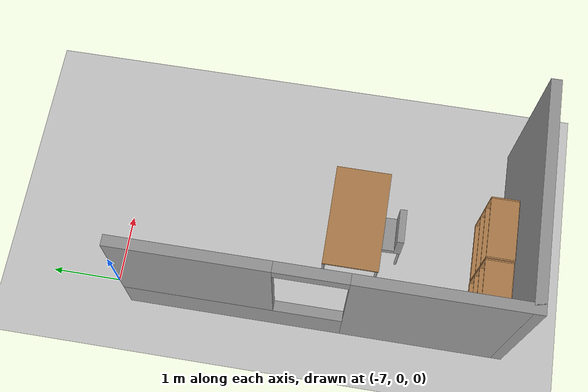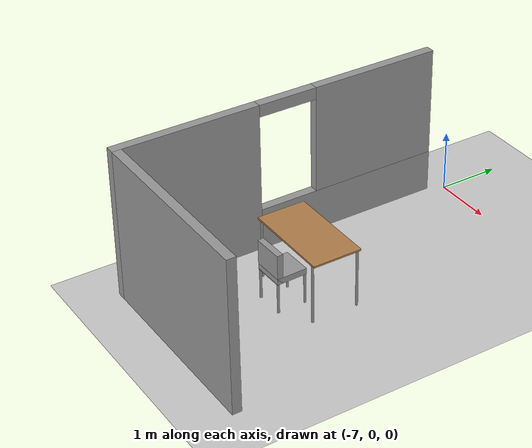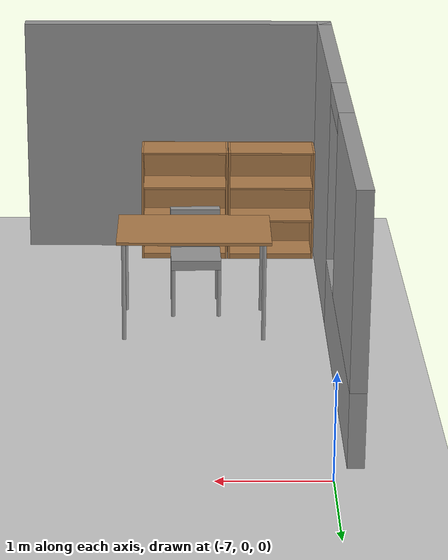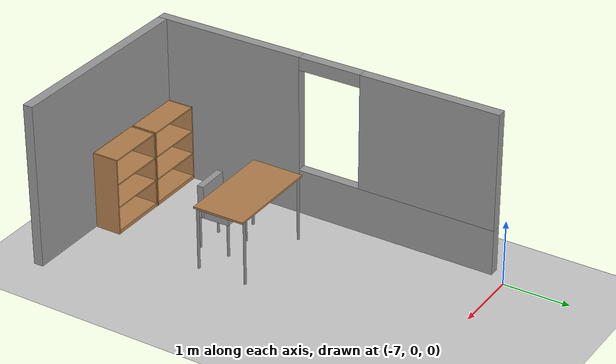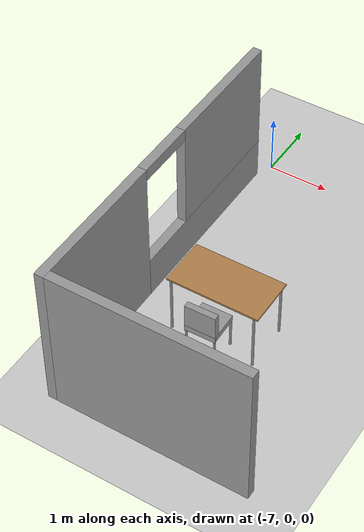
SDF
<sdf version="1.6">
 <world name="default">
  <model name="ground_plane">
   <static>1</static>
   <link name="link">
    <collision name="collision">
     <geometry><plane><normal>0 0 1</normal><size>100 100</size></plane></geometry>
     <surface>
      <contact><collide_bitmask>65535</collide_bitmask></contact>
      <friction><ode><mu>100</mu><mu2>50</mu2></ode></friction>
     </surface>
    </collision>
    <visual name="visual">
     <cast_shadows>0</cast_shadows>
     <geometry><plane><normal>0 0 1</normal><size>100 100</size></plane></geometry>
     <material>
      <script><uri>file://media/materials/scripts/gazebo.material</uri><name>Gazebo/Grey</name></script>
     </material>
    </visual>
   </link>
  </model>
  <model name="dunder_mifflin_scranton_full">
   <pose>4.5312 0.479645 0 0 -0 0</pose>
   <link name="Wall_12">
    <collision name="Wall_12_Collision">
     <geometry><box><size>3.25 0.15 2.5</size></box></geometry>
     <pose>0 0 1.25 0 -0 0</pose>
    </collision>
    <visual name="Wall_12_Visual">
     <pose>0 0 1.25 0 -0 0</pose>
     <geometry><box><size>3.25 0.15 2.5</size></box></geometry>
     <material>
      <script><uri>file://media/materials/scripts/gazebo.material</uri><name>Gazebo/Grey</name></script>
      <ambient>1 1 1 1</ambient>
     </material>
     <meta><layer>0</layer></meta>
    </visual>
    <pose>-10.1821 -6.15 0 0 -0 3.14159</pose>
   </link>
   <link name="Wall_13">
    <pose>-11.7321 -3.475 0 0 -0 1.5708</pose>
    <visual name="Wall_13_Visual_0">
     <pose>-1.56118 0 1.25 0 -0 0</pose>
     <geometry><box><size>2.37764 0.15 2.5</size></box></geometry>
     <material>
      <script><uri>file://media/materials/scripts/gazebo.material</uri><name>Gazebo/Grey</name></script>
      <ambient>1 1 1 1</ambient>
     </material>
     <meta><layer>0</layer></meta>
    </visual>
    <collision name="Wall_13_Collision_0">
     <geometry><box><size>2.37764 0.15 2.5</size></box></geometry>
     <pose>-1.56118 0 1.25 0 -0 0</pose>
    </collision>
    <visual name="Wall_13_Visual_1">
     <pose>1.18882 0 0.35 0 -0 0</pose>
     <geometry><box><size>3.12236 0.15 0.7</size></box></geometry>
     <material>
      <script><uri>file://media/materials/scripts/gazebo.material</uri><name>Gazebo/Grey</name></script>
      <ambient>1 1 1 1</ambient>
     </material>
     <meta><layer>0</layer></meta>
    </visual>
    <collision name="Wall_13_Collision_1">
     <geometry><box><size>3.12236 0.15 0.7</size></box></geometry>
     <pose>1.18882 0 0.35 0 -0 0</pose>
    </collision>
    <visual name="Wall_13_Visual_2">
     <pose>1.67832 0 1.6 0 -0 0</pose>
     <geometry><box><size>2.14336 0.15 1.8</size></box></geometry>
     <material>
      <script><uri>file://media/materials/scripts/gazebo.material</uri><name>Gazebo/Grey</name></script>
      <ambient>1 1 1 1</ambient>
     </material>
     <meta><layer>0</layer></meta>
    </visual>
    <collision name="Wall_13_Collision_2">
     <geometry><box><size>2.14336 0.15 1.8</size></box></geometry>
     <pose>1.67832 0 1.6 0 -0 0</pose>
    </collision>
    <visual name="Wall_13_Visual_3">
     <pose>0.117145 0 2.4 0 -0 0</pose>
     <geometry><box><size>0.979 0.15 0.2</size></box></geometry>
     <material>
      <script><uri>file://media/materials/scripts/gazebo.material</uri><name>Gazebo/Grey</name></script>
      <ambient>1 1 1 1</ambient>
     </material>
     <meta><layer>0</layer></meta>
    </visual>
    <collision name="Wall_13_Collision_3">
     <geometry><box><size>0.979 0.15 0.2</size></box></geometry>
     <pose>0.117145 0 2.4 0 -0 0</pose>
    </collision>
   </link>
   <static>1</static>
  </model>
  <model name="table">
   <static>1</static>
   <link name="link">
    <collision name="surface">
     <pose>0 0 1 0 -0 0</pose>
     <geometry><box><size>1.5 0.8 0.03</size></box></geometry>
     <surface><friction><ode><mu>0.6</mu><mu2>0.6</mu2></ode></friction></surface>
    </collision>
    <visual name="visual1">
     <pose>0 0 1 0 -0 0</pose>
     <geometry><box><size>1.5 0.8 0.03</size></box></geometry>
     <material>
      <script><uri>file://media/materials/scripts/gazebo.material</uri><name>Gazebo/Wood</name></script>
     </material>
    </visual>
    <collision name="front_left_leg">
     <pose>0.68 0.38 0.5 0 -0 0</pose>
     <geometry><cylinder><radius>0.02</radius><length>1</length></cylinder></geometry>
    </collision>
    <visual name="front_left_leg">
     <pose>0.68 0.38 0.5 0 -0 0</pose>
     <geometry><cylinder><radius>0.02</radius><length>1</length></cylinder></geometry>
     <material>
      <script><uri>file://media/materials/scripts/gazebo.material</uri><name>Gazebo/Grey</name></script>
     </material>
    </visual>
    <collision name="front_right_leg">
     <pose>0.68 -0.38 0.5 0 -0 0</pose>
     <geometry><cylinder><radius>0.02</radius><length>1</length></cylinder></geometry>
    </collision>
    <visual name="front_right_leg">
     <pose>0.68 -0.38 0.5 0 -0 0</pose>
     <geometry><cylinder><radius>0.02</radius><length>1</length></cylinder></geometry>
     <material>
      <script><uri>file://media/materials/scripts/gazebo.material</uri><name>Gazebo/Grey</name></script>
     </material>
    </visual>
    <collision name="back_right_leg">
     <pose>-0.68 -0.38 0.5 0 -0 0</pose>
     <geometry><cylinder><radius>0.02</radius><length>1</length></cylinder></geometry>
    </collision>
    <visual name="back_right_leg">
     <pose>-0.68 -0.38 0.5 0 -0 0</pose>
     <geometry><cylinder><radius>0.02</radius><length>1</length></cylinder></geometry>
     <material>
      <script><uri>file://media/materials/scripts/gazebo.material</uri><name>Gazebo/Grey</name></script>
     </material>
    </visual>
    <collision name="back_left_leg">
     <pose>-0.68 0.38 0.5 0 -0 0</pose>
     <geometry><cylinder><radius>0.02</radius><length>1</length></cylinder></geometry>
    </collision>
    <visual name="back_left_leg">
     <pose>-0.68 0.38 0.5 0 -0 0</pose>
     <geometry><cylinder><radius>0.02</radius><length>1</length></cylinder></geometry>
     <material>
      <script><uri>file://media/materials/scripts/gazebo.material</uri><name>Gazebo/Grey</name></script>
     </material>
    </visual>
   </link>
   <pose>-5.82506 -3.3682 0 0 -0 0</pose>
  </model>
  <model name="chair_5">
   <link name="link_0">
    <inertial>
     <mass>1</mass>
     <inertia><ixx>0.145833</ixx><ixy>0</ixy><ixz>0</ixz><iyy>0.145833</iyy><iyz>0</iyz><izz>0.125</izz></inertia>
    </inertial>
    <pose>-0.23 -0.19667 -0.280001 0 -0 0</pose>
    <visual name="visual">
     <geometry><cylinder><radius>0.02</radius><length>0.5</length></cylinder></geometry>
     <material>
      <lighting>1</lighting>
      <script><uri>file://media/materials/scripts/gazebo.material</uri><name>Gazebo/Grey</name></script>
      <shader type="vertex"><normal_map>__default__</normal_map></shader>
      <ambient>0.3 0.3 0.3 1</ambient>
      <diffuse>0.7 0.7 0.7 1</diffuse>
      <specular>0.01 0.01 0.01 1</specular>
      <emissive>0 0 0 1</emissive>
     </material>
    </visual>
    <collision name="collision">
     <geometry><cylinder><radius>0.02</radius><length>0.5</length></cylinder></geometry>
     <surface>
      <friction>
       <ode><mu>1</mu><mu2>1</mu2><fdir1>0 0 0</fdir1><slip1>0</slip1><slip2>0</slip2></ode>
       <torsional>
        <coefficient>1</coefficient>
        <patch_radius>0</patch_radius>
        <surface_radius>0</surface_radius>
        <use_patch_radius>1</use_patch_radius>
        <ode><slip>0</slip></ode>
       </torsional>
      </friction>
      <bounce><restitution_coefficient>0</restitution_coefficient><threshold>1e+06</threshold></bounce>
      <contact>
       <collide_without_contact>0</collide_without_contact>
       <collide_without_contact_bitmask>1</collide_without_contact_bitmask>
       <collide_bitmask>1</collide_bitmask>
       <ode>
        <soft_cfm>0</soft_cfm>
        <soft_erp>0.2</soft_erp>
        <kp>1e+13</kp>
        <kd>1</kd>
        <max_vel>0.01</max_vel>
        <min_depth>0</min_depth>
       </ode>
       <bullet>
        <split_impulse>1</split_impulse>
        <split_impulse_penetration_threshold>-0.01</split_impulse_penetration_threshold>
        <soft_cfm>0</soft_cfm>
        <soft_erp>0.2</soft_erp>
        <kp>1e+13</kp>
        <kd>1</kd>
       </bullet>
      </contact>
     </surface>
    </collision>
   </link>
   <link name="link_0_clone">
    <inertial>
     <mass>1</mass>
     <inertia><ixx>0.145833</ixx><ixy>0</ixy><ixz>0</ixz><iyy>0.145833</iyy><iyz>0</iyz><izz>0.125</izz></inertia>
    </inertial>
    <pose>0.23 -0.19667 -0.280001 0 -0 0</pose>
    <visual name="visual">
     <geometry><cylinder><radius>0.02</radius><length>0.5</length></cylinder></geometry>
     <material>
      <lighting>1</lighting>
      <script><uri>file://media/materials/scripts/gazebo.material</uri><name>Gazebo/Grey</name></script>
      <shader type="vertex"><normal_map>__default__</normal_map></shader>
      <ambient>0.3 0.3 0.3 1</ambient>
      <diffuse>0.7 0.7 0.7 1</diffuse>
      <specular>0.01 0.01 0.01 1</specular>
      <emissive>0 0 0 1</emissive>
     </material>
    </visual>
    <collision name="collision">
     <geometry><cylinder><radius>0.02</radius><length>0.5</length></cylinder></geometry>
     <surface>
      <friction>
       <ode><mu>1</mu><mu2>1</mu2><fdir1>0 0 0</fdir1><slip1>0</slip1><slip2>0</slip2></ode>
       <torsional>
        <coefficient>1</coefficient>
        <patch_radius>0</patch_radius>
        <surface_radius>0</surface_radius>
        <use_patch_radius>1</use_patch_radius>
        <ode><slip>0</slip></ode>
       </torsional>
      </friction>
      <bounce><restitution_coefficient>0</restitution_coefficient><threshold>1e+06</threshold></bounce>
      <contact>
       <collide_without_contact>0</collide_without_contact>
       <collide_without_contact_bitmask>1</collide_without_contact_bitmask>
       <collide_bitmask>1</collide_bitmask>
       <ode>
        <soft_cfm>0</soft_cfm>
        <soft_erp>0.2</soft_erp>
        <kp>1e+13</kp>
        <kd>1</kd>
        <max_vel>0.01</max_vel>
        <min_depth>0</min_depth>
       </ode>
       <bullet>
        <split_impulse>1</split_impulse>
        <split_impulse_penetration_threshold>-0.01</split_impulse_penetration_threshold>
        <soft_cfm>0</soft_cfm>
        <soft_erp>0.2</soft_erp>
        <kp>1e+13</kp>
        <kd>1</kd>
       </bullet>
      </contact>
     </surface>
    </collision>
   </link>
   <link name="link_0_clone_0">
    <inertial>
     <mass>1</mass>
     <inertia><ixx>0.145833</ixx><ixy>0</ixy><ixz>0</ixz><iyy>0.145833</iyy><iyz>0</iyz><izz>0.125</izz></inertia>
    </inertial>
    <pose>0.23 0.26333 -0.280001 0 -0 0</pose>
    <visual name="visual">
     <geometry><cylinder><radius>0.02</radius><length>0.5</length></cylinder></geometry>
     <material>
      <lighting>1</lighting>
      <script><uri>file://media/materials/scripts/gazebo.material</uri><name>Gazebo/Grey</name></script>
      <shader type="vertex"><normal_map>__default__</normal_map></shader>
      <ambient>0.3 0.3 0.3 1</ambient>
      <diffuse>0.7 0.7 0.7 1</diffuse>
      <specular>0.01 0.01 0.01 1</specular>
      <emissive>0 0 0 1</emissive>
     </material>
    </visual>
    <collision name="collision">
     <geometry><cylinder><radius>0.02</radius><length>0.5</length></cylinder></geometry>
     <surface>
      <friction>
       <ode><mu>1</mu><mu2>1</mu2><fdir1>0 0 0</fdir1><slip1>0</slip1><slip2>0</slip2></ode>
       <torsional>
        <coefficient>1</coefficient>
        <patch_radius>0</patch_radius>
        <surface_radius>0</surface_radius>
        <use_patch_radius>1</use_patch_radius>
        <ode><slip>0</slip></ode>
       </torsional>
      </friction>
      <bounce><restitution_coefficient>0</restitution_coefficient><threshold>1e+06</threshold></bounce>
      <contact>
       <collide_without_contact>0</collide_without_contact>
       <collide_without_contact_bitmask>1</collide_without_contact_bitmask>
       <collide_bitmask>1</collide_bitmask>
       <ode>
        <soft_cfm>0</soft_cfm>
        <soft_erp>0.2</soft_erp>
        <kp>1e+13</kp>
        <kd>1</kd>
        <max_vel>0.01</max_vel>
        <min_depth>0</min_depth>
       </ode>
       <bullet>
        <split_impulse>1</split_impulse>
        <split_impulse_penetration_threshold>-0.01</split_impulse_penetration_threshold>
        <soft_cfm>0</soft_cfm>
        <soft_erp>0.2</soft_erp>
        <kp>1e+13</kp>
        <kd>1</kd>
       </bullet>
      </contact>
     </surface>
    </collision>
   </link>
   <link name="link_0_clone_1">
    <inertial>
     <mass>1</mass>
     <inertia><ixx>0.145833</ixx><ixy>0</ixy><ixz>0</ixz><iyy>0.145833</iyy><iyz>0</iyz><izz>0.125</izz></inertia>
    </inertial>
    <pose>-0.23 0.26333 -0.280001 0 -0 0</pose>
    <visual name="visual">
     <geometry><cylinder><radius>0.02</radius><length>0.5</length></cylinder></geometry>
     <material>
      <lighting>1</lighting>
      <script><uri>file://media/materials/scripts/gazebo.material</uri><name>Gazebo/Grey</name></script>
      <shader type="vertex"><normal_map>__default__</normal_map></shader>
      <ambient>0.3 0.3 0.3 1</ambient>
      <diffuse>0.7 0.7 0.7 1</diffuse>
      <specular>0.01 0.01 0.01 1</specular>
      <emissive>0 0 0 1</emissive>
     </material>
    </visual>
    <collision name="collision">
     <geometry><cylinder><radius>0.02</radius><length>0.5</length></cylinder></geometry>
     <surface>
      <friction>
       <ode><mu>1</mu><mu2>1</mu2><fdir1>0 0 0</fdir1><slip1>0</slip1><slip2>0</slip2></ode>
       <torsional>
        <coefficient>1</coefficient>
        <patch_radius>0</patch_radius>
        <surface_radius>0</surface_radius>
        <use_patch_radius>1</use_patch_radius>
        <ode><slip>0</slip></ode>
       </torsional>
      </friction>
      <bounce><restitution_coefficient>0</restitution_coefficient><threshold>1e+06</threshold></bounce>
      <contact>
       <collide_without_contact>0</collide_without_contact>
       <collide_without_contact_bitmask>1</collide_without_contact_bitmask>
       <collide_bitmask>1</collide_bitmask>
       <ode>
        <soft_cfm>0</soft_cfm>
        <soft_erp>0.2</soft_erp>
        <kp>1e+13</kp>
        <kd>1</kd>
        <max_vel>0.01</max_vel>
        <min_depth>0</min_depth>
       </ode>
       <bullet>
        <split_impulse>1</split_impulse>
        <split_impulse_penetration_threshold>-0.01</split_impulse_penetration_threshold>
        <soft_cfm>0</soft_cfm>
        <soft_erp>0.2</soft_erp>
        <kp>1e+13</kp>
        <kd>1</kd>
       </bullet>
      </contact>
     </surface>
    </collision>
   </link>
   <link name="link_2">
    <inertial>
     <mass>1</mass>
     <inertia>
      <ixx>0.166667</ixx>
      <ixy>0</ixy>
      <ixz>0</ixz>
      <iyy>0.166667</iyy>
      <iyz>0</iyz>
      <izz>0.166667</izz>
     </inertia>
    </inertial>
    <pose>0 0.03333 0.019999 0 -0 0</pose>
    <visual name="visual">
     <geometry><box><size>0.5 0.5 0.1</size></box></geometry>
     <material>
      <lighting>1</lighting>
      <script><uri>file://media/materials/scripts/gazebo.material</uri><name>Gazebo/Grey</name></script>
      <shader type="vertex"><normal_map>__default__</normal_map></shader>
      <ambient>0.3 0.3 0.3 1</ambient>
      <diffuse>0.7 0.7 0.7 1</diffuse>
      <specular>0.01 0.01 0.01 1</specular>
      <emissive>0 0 0 1</emissive>
     </material>
    </visual>
    <collision name="collision">
     <geometry><box><size>0.5 0.5 0.1</size></box></geometry>
     <surface>
      <friction>
       <ode><mu>1</mu><mu2>1</mu2><fdir1>0 0 0</fdir1><slip1>0</slip1><slip2>0</slip2></ode>
       <torsional>
        <coefficient>1</coefficient>
        <patch_radius>0</patch_radius>
        <surface_radius>0</surface_radius>
        <use_patch_radius>1</use_patch_radius>
        <ode><slip>0</slip></ode>
       </torsional>
      </friction>
      <bounce><restitution_coefficient>0</restitution_coefficient><threshold>1e+06</threshold></bounce>
      <contact>
       <collide_without_contact>0</collide_without_contact>
       <collide_without_contact_bitmask>1</collide_without_contact_bitmask>
       <collide_bitmask>1</collide_bitmask>
       <ode>
        <soft_cfm>0</soft_cfm>
        <soft_erp>0.2</soft_erp>
        <kp>1e+13</kp>
        <kd>1</kd>
        <max_vel>0.01</max_vel>
        <min_depth>0</min_depth>
       </ode>
       <bullet>
        <split_impulse>1</split_impulse>
        <split_impulse_penetration_threshold>-0.01</split_impulse_penetration_threshold>
        <soft_cfm>0</soft_cfm>
        <soft_erp>0.2</soft_erp>
        <kp>1e+13</kp>
        <kd>1</kd>
       </bullet>
      </contact>
     </surface>
    </collision>
   </link>
   <link name="link_2_clone">
    <inertial>
     <mass>1</mass>
     <inertia>
      <ixx>0.166667</ixx>
      <ixy>0</ixy>
      <ixz>0</ixz>
      <iyy>0.166667</iyy>
      <iyz>0</iyz>
      <izz>0.166667</izz>
     </inertia>
    </inertial>
    <pose>0 -0.166646 0.220004 1.5707 -0 0</pose>
    <visual name="visual">
     <geometry><box><size>0.5 0.5 0.1</size></box></geometry>
     <material>
      <lighting>1</lighting>
      <script><uri>file://media/materials/scripts/gazebo.material</uri><name>Gazebo/Grey</name></script>
      <shader type="vertex"><normal_map>__default__</normal_map></shader>
      <ambient>0.3 0.3 0.3 1</ambient>
      <diffuse>0.7 0.7 0.7 1</diffuse>
      <specular>0.01 0.01 0.01 1</specular>
      <emissive>0 0 0 1</emissive>
     </material>
    </visual>
    <collision name="collision">
     <geometry><box><size>0.5 0.5 0.1</size></box></geometry>
     <surface>
      <friction>
       <ode><mu>1</mu><mu2>1</mu2><fdir1>0 0 0</fdir1><slip1>0</slip1><slip2>0</slip2></ode>
       <torsional>
        <coefficient>1</coefficient>
        <patch_radius>0</patch_radius>
        <surface_radius>0</surface_radius>
        <use_patch_radius>1</use_patch_radius>
        <ode><slip>0</slip></ode>
       </torsional>
      </friction>
      <bounce><restitution_coefficient>0</restitution_coefficient><threshold>1e+06</threshold></bounce>
      <contact>
       <collide_without_contact>0</collide_without_contact>
       <collide_without_contact_bitmask>1</collide_without_contact_bitmask>
       <collide_bitmask>1</collide_bitmask>
       <ode>
        <soft_cfm>0</soft_cfm>
        <soft_erp>0.2</soft_erp>
        <kp>1e+13</kp>
        <kd>1</kd>
        <max_vel>0.01</max_vel>
        <min_depth>0</min_depth>
       </ode>
       <bullet>
        <split_impulse>1</split_impulse>
        <split_impulse_penetration_threshold>-0.01</split_impulse_penetration_threshold>
        <soft_cfm>0</soft_cfm>
        <soft_erp>0.2</soft_erp>
        <kp>1e+13</kp>
        <kd>1</kd>
       </bullet>
      </contact>
     </surface>
    </collision>
   </link>
   <joint name="link_0_clone_JOINT_2" type="fixed">
    <parent>link_2</parent>
    <child>link_0_clone</child>
    <physics>
     <ode><limit><cfm>0</cfm><erp>0.2</erp></limit><suspension><cfm>0</cfm><erp>0.2</erp></suspension></ode>
    </physics>
   </joint>
   <joint name="link_2_JOINT_1" type="fixed">
    <parent>link_2</parent>
    <child>link_0</child>
    <physics>
     <ode><limit><cfm>0</cfm><erp>0.2</erp></limit><suspension><cfm>0</cfm><erp>0.2</erp></suspension></ode>
    </physics>
   </joint>
   <joint name="link_2_JOINT_3" type="fixed">
    <parent>link_2</parent>
    <child>link_0_clone_0</child>
    <physics>
     <ode><limit><cfm>0</cfm><erp>0.2</erp></limit><suspension><cfm>0</cfm><erp>0.2</erp></suspension></ode>
    </physics>
   </joint>
   <joint name="link_2_JOINT_4" type="fixed">
    <parent>link_2</parent>
    <child>link_0_clone_1</child>
    <physics>
     <ode><limit><cfm>0</cfm><erp>0.2</erp></limit><suspension><cfm>0</cfm><erp>0.2</erp></suspension></ode>
    </physics>
   </joint>
   <joint name="link_2_JOINT_5" type="fixed">
    <parent>link_2</parent>
    <child>link_2_clone</child>
    <physics>
     <ode><limit><cfm>0</cfm><erp>0.2</erp></limit><suspension><cfm>0</cfm><erp>0.2</erp></suspension></ode>
    </physics>
   </joint>
   <static>0</static>
   <pose>-5.84092 -3.8448 0.529997 1e-06 -0 0.024979</pose>
  </model>
  <model name="bookshelf_0">
   <static>1</static>
   <link name="link">
    <inertial><mass>1</mass></inertial>
    <collision name="back">
     <pose>0 0.005 0.6 0 -0 0</pose>
     <geometry><box><size>0.9 0.01 1.2</size></box></geometry>
    </collision>
    <visual name="visual1">
     <pose>0 0.005 0.6 0 -0 0</pose>
     <geometry><box><size>0.9 0.01 1.2</size></box></geometry>
     <material>
      <script><uri>file://media/materials/scripts/gazebo.material</uri><name>Gazebo/Wood</name></script>
     </material>
    </visual>
    <collision name="left_side">
     <pose>0.45 -0.195 0.6 0 -0 0</pose>
     <geometry><box><size>0.02 0.4 1.2</size></box></geometry>
    </collision>
    <visual name="visual2">
     <pose>0.45 -0.195 0.6 0 -0 0</pose>
     <geometry><box><size>0.02 0.4 1.2</size></box></geometry>
     <material>
      <script><uri>file://media/materials/scripts/gazebo.material</uri><name>Gazebo/Wood</name></script>
     </material>
    </visual>
    <collision name="right_side">
     <pose>-0.45 -0.195 0.6 0 -0 0</pose>
     <geometry><box><size>0.02 0.4 1.2</size></box></geometry>
    </collision>
    <visual name="visual3">
     <pose>-0.45 -0.195 0.6 0 -0 0</pose>
     <geometry><box><size>0.02 0.4 1.2</size></box></geometry>
     <material>
      <script><uri>file://media/materials/scripts/gazebo.material</uri><name>Gazebo/Wood</name></script>
     </material>
    </visual>
    <collision name="bottom">
     <pose>0 -0.195 0.03 0 -0 0</pose>
     <geometry><box><size>0.88 0.4 0.06</size></box></geometry>
    </collision>
    <visual name="visual4">
     <pose>0 -0.195 0.03 0 -0 0</pose>
     <geometry><box><size>0.88 0.4 0.06</size></box></geometry>
     <material>
      <script><uri>file://media/materials/scripts/gazebo.material</uri><name>Gazebo/Wood</name></script>
     </material>
    </visual>
    <collision name="top">
     <pose>0 -0.195 1.19 0 -0 0</pose>
     <geometry><box><size>0.88 0.4 0.02</size></box></geometry>
    </collision>
    <visual name="visual5">
     <pose>0 -0.195 1.19 0 -0 0</pose>
     <geometry><box><size>0.88 0.4 0.02</size></box></geometry>
     <material>
      <script><uri>file://media/materials/scripts/gazebo.material</uri><name>Gazebo/Wood</name></script>
     </material>
    </visual>
    <collision name="low_shelf">
     <pose>0 -0.195 0.43 0 -0 0</pose>
     <geometry><box><size>0.88 0.4 0.02</size></box></geometry>
    </collision>
    <visual name="visual6">
     <pose>0 -0.195 0.43 0 -0 0</pose>
     <geometry><box><size>0.88 0.4 0.02</size></box></geometry>
     <material>
      <script><uri>file://media/materials/scripts/gazebo.material</uri><name>Gazebo/Wood</name></script>
     </material>
    </visual>
    <collision name="high_shelf">
     <pose>0 -0.195 0.8 0 -0 0</pose>
     <geometry><box><size>0.88 0.4 0.02</size></box></geometry>
    </collision>
    <visual name="visual7">
     <pose>0 -0.195 0.8 0 -0 0</pose>
     <geometry><box><size>0.88 0.4 0.02</size></box></geometry>
     <material>
      <script><uri>file://media/materials/scripts/gazebo.material</uri><name>Gazebo/Wood</name></script>
     </material>
    </visual>
   </link>
   <pose>-6.65287 -5.5794 0 0 0 -3.14159</pose>
  </model>
  <model name="bookshelf_1">
   <static>1</static>
   <link name="link">
    <inertial><mass>1</mass></inertial>
    <collision name="back">
     <pose>0 0.005 0.6 0 -0 0</pose>
     <geometry><box><size>0.9 0.01 1.2</size></box></geometry>
    </collision>
    <visual name="visual1">
     <pose>0 0.005 0.6 0 -0 0</pose>
     <geometry><box><size>0.9 0.01 1.2</size></box></geometry>
     <material>
      <script><uri>file://media/materials/scripts/gazebo.material</uri><name>Gazebo/Wood</name></script>
     </material>
    </visual>
    <collision name="left_side">
     <pose>0.45 -0.195 0.6 0 -0 0</pose>
     <geometry><box><size>0.02 0.4 1.2</size></box></geometry>
    </collision>
    <visual name="visual2">
     <pose>0.45 -0.195 0.6 0 -0 0</pose>
     <geometry><box><size>0.02 0.4 1.2</size></box></geometry>
     <material>
      <script><uri>file://media/materials/scripts/gazebo.material</uri><name>Gazebo/Wood</name></script>
     </material>
    </visual>
    <collision name="right_side">
     <pose>-0.45 -0.195 0.6 0 -0 0</pose>
     <geometry><box><size>0.02 0.4 1.2</size></box></geometry>
    </collision>
    <visual name="visual3">
     <pose>-0.45 -0.195 0.6 0 -0 0</pose>
     <geometry><box><size>0.02 0.4 1.2</size></box></geometry>
     <material>
      <script><uri>file://media/materials/scripts/gazebo.material</uri><name>Gazebo/Wood</name></script>
     </material>
    </visual>
    <collision name="bottom">
     <pose>0 -0.195 0.03 0 -0 0</pose>
     <geometry><box><size>0.88 0.4 0.06</size></box></geometry>
    </collision>
    <visual name="visual4">
     <pose>0 -0.195 0.03 0 -0 0</pose>
     <geometry><box><size>0.88 0.4 0.06</size></box></geometry>
     <material>
      <script><uri>file://media/materials/scripts/gazebo.material</uri><name>Gazebo/Wood</name></script>
     </material>
    </visual>
    <collision name="top">
     <pose>0 -0.195 1.19 0 -0 0</pose>
     <geometry><box><size>0.88 0.4 0.02</size></box></geometry>
    </collision>
    <visual name="visual5">
     <pose>0 -0.195 1.19 0 -0 0</pose>
     <geometry><box><size>0.88 0.4 0.02</size></box></geometry>
     <material>
      <script><uri>file://media/materials/scripts/gazebo.material</uri><name>Gazebo/Wood</name></script>
     </material>
    </visual>
    <collision name="low_shelf">
     <pose>0 -0.195 0.43 0 -0 0</pose>
     <geometry><box><size>0.88 0.4 0.02</size></box></geometry>
    </collision>
    <visual name="visual6">
     <pose>0 -0.195 0.43 0 -0 0</pose>
     <geometry><box><size>0.88 0.4 0.02</size></box></geometry>
     <material>
      <script><uri>file://media/materials/scripts/gazebo.material</uri><name>Gazebo/Wood</name></script>
     </material>
    </visual>
    <collision name="high_shelf">
     <pose>0 -0.195 0.8 0 -0 0</pose>
     <geometry><box><size>0.88 0.4 0.02</size></box></geometry>
    </collision>
    <visual name="visual7">
     <pose>0 -0.195 0.8 0 -0 0</pose>
     <geometry><box><size>0.88 0.4 0.02</size></box></geometry>
     <material>
      <script><uri>file://media/materials/scripts/gazebo.material</uri><name>Gazebo/Wood</name></script>
     </material>
    </visual>
   </link>
   <pose>-5.72588 -5.58421 0 0 0 -3.14159</pose>
  </model>
 </world>
</sdf>
